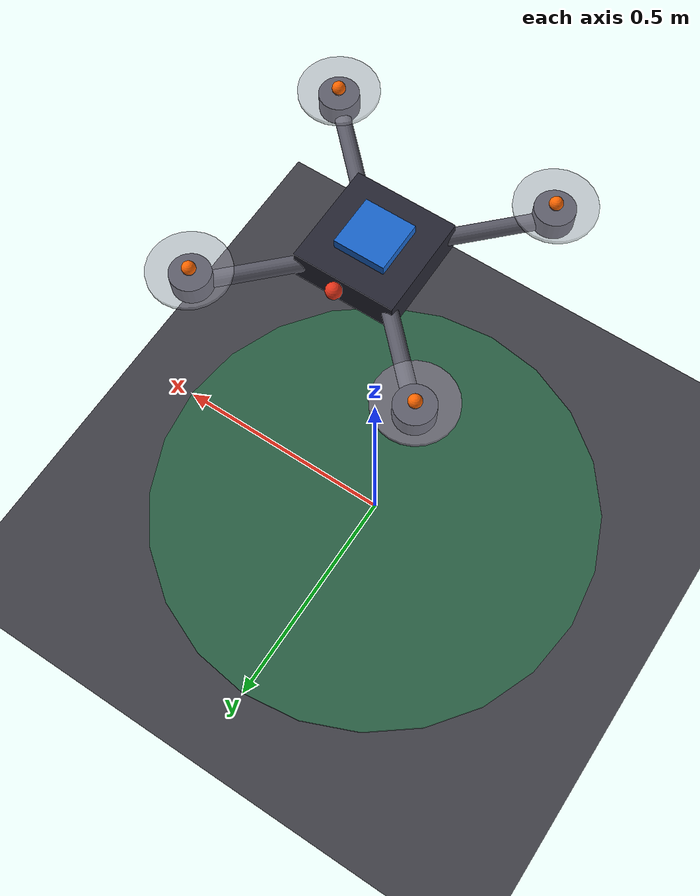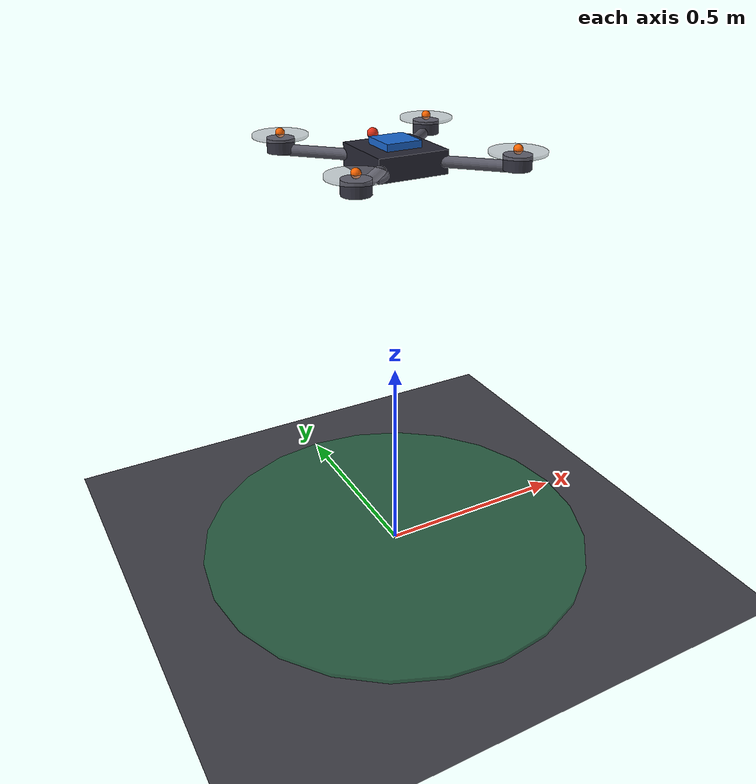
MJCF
<mujoco model="drone">
  <compiler angle="radian"/>

  <option timestep="0.005" gravity="0 0 -9.81" integrator="RK4">
    <flag contact="enable"/>
  </option>

  <default>
    <geom contype="1" conaffinity="1" condim="3" friction="1 0.5 0.5"/>
  </default>

  <worldbody>
    <light pos="0 0 8" dir="0 0 -1" diffuse="0.9 0.9 0.9" specular="0.3 0.3 0.3"/>
    <light pos="5 -5 6" dir="-0.5 0.5 -0.8" diffuse="0.4 0.4 0.5"/>

    <!-- Ground -->
    <geom name="ground" type="plane" size="20 20 0.1" rgba="0.25 0.25 0.28 1"/>

    <!-- Landing pad marker -->
    <geom name="pad" type="cylinder" pos="0 0 0.005" size="0.5 0.005" rgba="0.15 0.5 0.3 0.6"/>

    <!-- Drone Body -->
    <body name="drone" pos="0 0 1">
      <freejoint name="root"/>
      <inertial mass="1.2" pos="0 0 0" diaginertia="0.02 0.02 0.04"/>

      <!-- Central chassis -->
      <geom name="chassis" type="box" size="0.08 0.08 0.025" rgba="0.15 0.15 0.2 1"/>
      <geom name="chassis_top" type="box" pos="0 0 0.03" size="0.04 0.04 0.01" rgba="0.1 0.4 0.8 1"/>

      <!-- Arms (X-configuration) -->
      <geom name="arm_fr" type="capsule" fromto="0 0 0  0.18  0.18 0" size="0.012" rgba="0.35 0.35 0.4 1"/>
      <geom name="arm_fl" type="capsule" fromto="0 0 0 -0.18  0.18 0" size="0.012" rgba="0.35 0.35 0.4 1"/>
      <geom name="arm_br" type="capsule" fromto="0 0 0  0.18 -0.18 0" size="0.012" rgba="0.35 0.35 0.4 1"/>
      <geom name="arm_bl" type="capsule" fromto="0 0 0 -0.18 -0.18 0" size="0.012" rgba="0.35 0.35 0.4 1"/>

      <!-- Motor housings -->
      <geom name="motor_fr" type="cylinder" pos=" 0.18  0.18 0.01" size="0.03 0.015" rgba="0.2 0.2 0.25 1"/>
      <geom name="motor_fl" type="cylinder" pos="-0.18  0.18 0.01" size="0.03 0.015" rgba="0.2 0.2 0.25 1"/>
      <geom name="motor_br" type="cylinder" pos=" 0.18 -0.18 0.01" size="0.03 0.015" rgba="0.2 0.2 0.25 1"/>
      <geom name="motor_bl" type="cylinder" pos="-0.18 -0.18 0.01" size="0.03 0.015" rgba="0.2 0.2 0.25 1"/>

      <!-- Thruster discs (visible propellers) -->
      <geom name="prop_fr" type="cylinder" pos=" 0.18  0.18 0.03" size="0.06 0.003" rgba="0.6 0.6 0.65 0.5"/>
      <geom name="prop_fl" type="cylinder" pos="-0.18  0.18 0.03" size="0.06 0.003" rgba="0.6 0.6 0.65 0.5"/>
      <geom name="prop_br" type="cylinder" pos=" 0.18 -0.18 0.03" size="0.06 0.003" rgba="0.6 0.6 0.65 0.5"/>
      <geom name="prop_bl" type="cylinder" pos="-0.18 -0.18 0.03" size="0.06 0.003" rgba="0.6 0.6 0.65 0.5"/>

      <!-- Thruster sites (for visual effects) -->
      <site name="thrust_fr" pos=" 0.18  0.18 0.035" size="0.01" rgba="1 0.4 0 1"/>
      <site name="thrust_fl" pos="-0.18  0.18 0.035" size="0.01" rgba="1 0.4 0 1"/>
      <site name="thrust_br" pos=" 0.18 -0.18 0.035" size="0.01" rgba="1 0.4 0 1"/>
      <site name="thrust_bl" pos="-0.18 -0.18 0.035" size="0.01" rgba="1 0.4 0 1"/>

      <!-- Front direction indicator -->
      <geom name="front_marker" type="sphere" pos="0 0.1 0.03" size="0.012" rgba="0.9 0.2 0.1 1"/>
    </body>
  </worldbody>
</mujoco>
